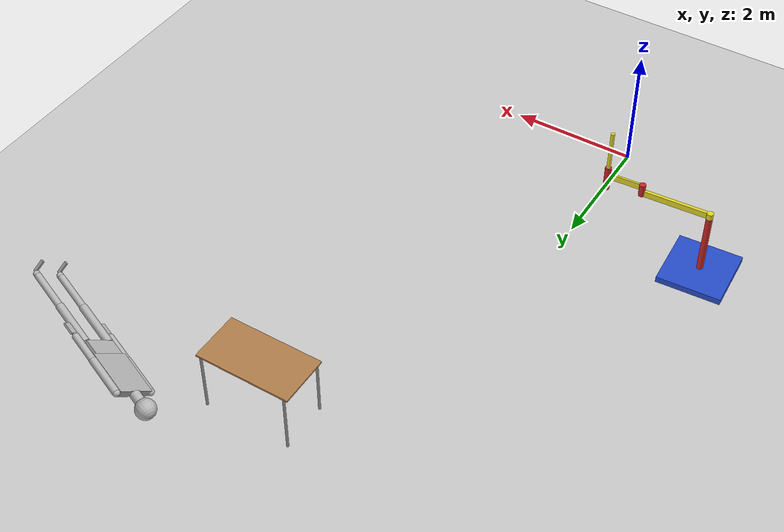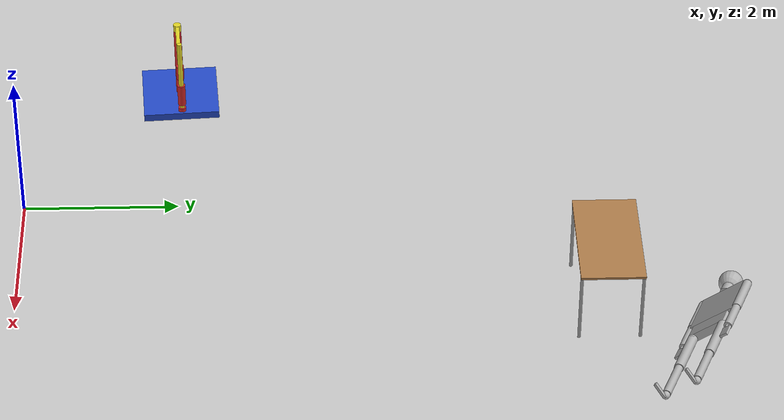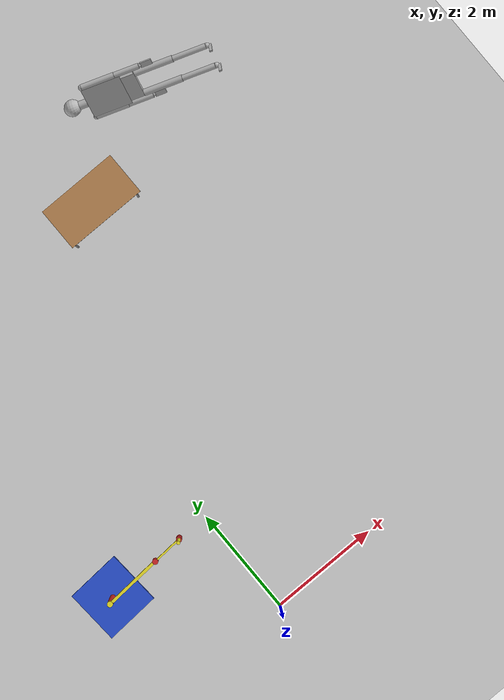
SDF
<sdf version="1.7">
 <world name="default">
  <light name="sun" type="directional">
   <pose>0 0 10 0 -0 0</pose>
   <diffuse>0.8 0.8 0.8 1</diffuse>
   <specular>0.2 0.2 0.2 1</specular>
   <attenuation>
    <range>1000</range>
    <constant>0.9</constant>
    <linear>0.01</linear>
    <quadratic>0.001</quadratic>
   </attenuation>
   <direction>-0.5 0.1 -0.9</direction>
   <spot><inner_angle>0</inner_angle><outer_angle>0</outer_angle><falloff>0</falloff></spot>
  </light>
  <model name="ground_plane">
   <static>1</static>
   <link name="link">
    <collision name="collision">
     <geometry><plane><normal>0 0 1</normal><size>100 100</size></plane></geometry>
     <surface>
      <contact><collide_bitmask>65535</collide_bitmask></contact>
      <friction><ode><mu>100</mu><mu2>50</mu2></ode></friction>
     </surface>
    </collision>
    <visual name="visual">
     <cast_shadows>0</cast_shadows>
     <geometry><plane><normal>0 0 1</normal><size>100 100</size></plane></geometry>
     <material>
      <script><uri>file://media/materials/scripts/gazebo.material</uri><name>Gazebo/Grey</name></script>
     </material>
    </visual>
   </link>
  </model>
  <gravity>0 0 -9.8</gravity>
  <magnetic_field>6e-06 2.3e-05 -4.2e-05</magnetic_field>
  <atmosphere type="adiabatic"/>
  <physics type="ode">
   <max_step_size>0.001</max_step_size>
   <real_time_factor>1</real_time_factor>
   <real_time_update_rate>1000</real_time_update_rate>
  </physics>
  <scene><ambient>0.4 0.4 0.4 1</ambient><background>0.7 0.7 0.7 1</background><shadows>1</shadows></scene>
  <audio><device>default</device></audio>
  <spherical_coordinates>
   <surface_model>EARTH_WGS84</surface_model>
   <latitude_deg>0</latitude_deg>
   <longitude_deg>0</longitude_deg>
   <elevation>0</elevation>
   <heading_deg>0</heading_deg>
  </spherical_coordinates>
  <model name="table">
   <static>1</static>
   <link name="link">
    <collision name="surface">
     <pose>0 0 1 0 -0 0</pose>
     <geometry><box><size>1.5 0.8 0.03</size></box></geometry>
     <surface><friction><ode><mu>0.6</mu><mu2>0.6</mu2></ode></friction></surface>
    </collision>
    <visual name="visual1">
     <pose>0 0 1 0 -0 0</pose>
     <geometry><box><size>1.5 0.8 0.03</size></box></geometry>
     <material>
      <script><uri>file://media/materials/scripts/gazebo.material</uri><name>Gazebo/Wood</name></script>
     </material>
    </visual>
    <collision name="front_left_leg">
     <pose>0.68 0.38 0.5 0 -0 0</pose>
     <geometry><cylinder><radius>0.02</radius><length>1</length></cylinder></geometry>
    </collision>
    <visual name="front_left_leg">
     <pose>0.68 0.38 0.5 0 -0 0</pose>
     <geometry><cylinder><radius>0.02</radius><length>1</length></cylinder></geometry>
     <material>
      <script><uri>file://media/materials/scripts/gazebo.material</uri><name>Gazebo/Grey</name></script>
     </material>
    </visual>
    <collision name="front_right_leg">
     <pose>0.68 -0.38 0.5 0 -0 0</pose>
     <geometry><cylinder><radius>0.02</radius><length>1</length></cylinder></geometry>
    </collision>
    <visual name="front_right_leg">
     <pose>0.68 -0.38 0.5 0 -0 0</pose>
     <geometry><cylinder><radius>0.02</radius><length>1</length></cylinder></geometry>
     <material>
      <script><uri>file://media/materials/scripts/gazebo.material</uri><name>Gazebo/Grey</name></script>
     </material>
    </visual>
    <collision name="back_right_leg">
     <pose>-0.68 -0.38 0.5 0 -0 0</pose>
     <geometry><cylinder><radius>0.02</radius><length>1</length></cylinder></geometry>
    </collision>
    <visual name="back_right_leg">
     <pose>-0.68 -0.38 0.5 0 -0 0</pose>
     <geometry><cylinder><radius>0.02</radius><length>1</length></cylinder></geometry>
     <material>
      <script><uri>file://media/materials/scripts/gazebo.material</uri><name>Gazebo/Grey</name></script>
     </material>
    </visual>
    <collision name="back_left_leg">
     <pose>-0.68 0.38 0.5 0 -0 0</pose>
     <geometry><cylinder><radius>0.02</radius><length>1</length></cylinder></geometry>
    </collision>
    <visual name="back_left_leg">
     <pose>-0.68 0.38 0.5 0 -0 0</pose>
     <geometry><cylinder><radius>0.02</radius><length>1</length></cylinder></geometry>
     <material>
      <script><uri>file://media/materials/scripts/gazebo.material</uri><name>Gazebo/Grey</name></script>
     </material>
    </visual>
   </link>
   <pose>1.99222 7.39445 0 0 -0 0</pose>
  </model>
  <model name="simple_arm">
   <link name="arm_base">
    <inertial>
     <pose>0 0 0.00099 0 -0 0</pose>
     <inertia><ixx>1.11</ixx><ixy>0</ixy><ixz>0</ixz><iyy>100.11</iyy><iyz>0</iyz><izz>1.01</izz></inertia>
     <mass>101</mass>
    </inertial>
    <collision name="arm_base_geom">
     <pose>0 0 0.05 0 -0 0</pose>
     <geometry><box><size>1 1 0.1</size></box></geometry>
    </collision>
    <visual name="arm_base_geom_visual">
     <pose>0 0 0.05 0 -0 0</pose>
     <geometry><box><size>1 1 0.1</size></box></geometry>
     <material>
      <script><uri>file://media/materials/scripts/gazebo.material</uri><name>Gazebo/Blue</name></script>
     </material>
    </visual>
    <collision name="arm_base_geom_arm_trunk">
     <pose>0 0 0.6 0 -0 0</pose>
     <geometry><cylinder><radius>0.05</radius><length>1</length></cylinder></geometry>
    </collision>
    <visual name="arm_base_geom_arm_trunk_visual">
     <pose>0 0 0.6 0 -0 0</pose>
     <geometry><cylinder><radius>0.05</radius><length>1</length></cylinder></geometry>
     <material>
      <script><uri>file://media/materials/scripts/gazebo.material</uri><name>Gazebo/Red</name></script>
     </material>
    </visual>
   </link>
   <link name="arm_shoulder_pan">
    <pose>0 0 1.1 0 -0 0</pose>
    <inertial>
     <pose>0.045455 0 0 0 -0 0</pose>
     <inertia><ixx>0.011</ixx><ixy>0</ixy><ixz>0</ixz><iyy>0.0225</iyy><iyz>0</iyz><izz>0.0135</izz></inertia>
     <mass>1.1</mass>
    </inertial>
    <collision name="arm_shoulder_pan_geom">
     <pose>0 0 0.05 0 -0 0</pose>
     <geometry><cylinder><radius>0.05</radius><length>0.1</length></cylinder></geometry>
    </collision>
    <visual name="arm_shoulder_pan_geom_visual">
     <pose>0 0 0.05 0 -0 0</pose>
     <geometry><cylinder><radius>0.05</radius><length>0.1</length></cylinder></geometry>
     <material>
      <script><uri>file://media/materials/scripts/gazebo.material</uri><name>Gazebo/Yellow</name></script>
     </material>
    </visual>
    <collision name="arm_shoulder_pan_geom_arm_shoulder">
     <pose>0.55 0 0.05 0 -0 0</pose>
     <geometry><box><size>1 0.05 0.1</size></box></geometry>
    </collision>
    <visual name="arm_shoulder_pan_geom_arm_shoulder_visual">
     <pose>0.55 0 0.05 0 -0 0</pose>
     <geometry><box><size>1 0.05 0.1</size></box></geometry>
     <material>
      <script><uri>file://media/materials/scripts/gazebo.material</uri><name>Gazebo/Yellow</name></script>
     </material>
    </visual>
   </link>
   <link name="arm_elbow_pan">
    <pose>1.05 0 1.1 0 -0 0</pose>
    <inertial>
     <pose>0.0875 0 0.083333 0 -0 0</pose>
     <inertia>
      <ixx>0.031</ixx>
      <ixy>0</ixy>
      <ixz>0.005</ixz>
      <iyy>0.07275</iyy>
      <iyz>0</iyz>
      <izz>0.04475</izz>
     </inertia>
     <mass>1.2</mass>
    </inertial>
    <collision name="arm_elbow_pan_geom">
     <pose>0 0 0.1 0 -0 0</pose>
     <geometry><cylinder><radius>0.05</radius><length>0.2</length></cylinder></geometry>
    </collision>
    <visual name="arm_elbow_pan_geom_visual">
     <pose>0 0 0.1 0 -0 0</pose>
     <geometry><cylinder><radius>0.05</radius><length>0.2</length></cylinder></geometry>
     <material>
      <script><uri>file://media/materials/scripts/gazebo.material</uri><name>Gazebo/Red</name></script>
     </material>
    </visual>
    <collision name="arm_elbow_pan_geom_arm_elbow">
     <pose>0.3 0 0.15 0 -0 0</pose>
     <geometry><box><size>0.5 0.03 0.1</size></box></geometry>
    </collision>
    <visual name="arm_elbow_pan_geom_arm_elbow_visual">
     <pose>0.3 0 0.15 0 -0 0</pose>
     <geometry><box><size>0.5 0.03 0.1</size></box></geometry>
     <material>
      <script><uri>file://media/materials/scripts/gazebo.material</uri><name>Gazebo/Yellow</name></script>
     </material>
    </visual>
    <collision name="arm_elbow_pan_geom_arm_wrist">
     <pose>0.55 0 0.15 0 -0 0</pose>
     <geometry><cylinder><radius>0.05</radius><length>0.3</length></cylinder></geometry>
    </collision>
    <visual name="arm_elbow_pan_geom_arm_wrist_visual">
     <pose>0.55 0 0.15 0 -0 0</pose>
     <geometry><cylinder><radius>0.05</radius><length>0.3</length></cylinder></geometry>
     <material>
      <script><uri>file://media/materials/scripts/gazebo.material</uri><name>Gazebo/Red</name></script>
     </material>
    </visual>
   </link>
   <link name="arm_wrist_lift">
    <pose>1.6 0 1.05 0 -0 0</pose>
    <inertial>
     <inertia><ixx>0.01</ixx><ixy>0</ixy><ixz>0</ixz><iyy>0.01</iyy><iyz>0</iyz><izz>0.001</izz></inertia>
     <mass>0.1</mass>
    </inertial>
    <collision name="arm_wrist_lift_geom">
     <pose>0 0 0.5 0 -0 0</pose>
     <geometry><cylinder><radius>0.03</radius><length>1</length></cylinder></geometry>
    </collision>
    <visual name="arm_wrist_lift_geom_visual">
     <pose>0 0 0.5 0 -0 0</pose>
     <geometry><cylinder><radius>0.03</radius><length>1</length></cylinder></geometry>
     <material>
      <script><uri>file://media/materials/scripts/gazebo.material</uri><name>Gazebo/Yellow</name></script>
     </material>
    </visual>
   </link>
   <link name="arm_wrist_roll">
    <pose>1.6 0 1 0 -0 0</pose>
    <inertial>
     <inertia><ixx>0.01</ixx><ixy>0</ixy><ixz>0</ixz><iyy>0.01</iyy><iyz>0</iyz><izz>0.001</izz></inertia>
     <mass>0.1</mass>
    </inertial>
    <collision name="arm_wrist_roll_geom">
     <pose>0 0 0.025 0 -0 0</pose>
     <geometry><cylinder><radius>0.05</radius><length>0.05</length></cylinder></geometry>
    </collision>
    <visual name="arm_wrist_roll_geom_visual">
     <pose>0 0 0.025 0 -0 0</pose>
     <geometry><cylinder><radius>0.05</radius><length>0.05</length></cylinder></geometry>
     <material>
      <script><uri>file://media/materials/scripts/gazebo.material</uri><name>Gazebo/Red</name></script>
     </material>
    </visual>
   </link>
   <joint name="arm_shoulder_pan_joint" type="revolute">
    <parent>arm_base</parent>
    <child>arm_shoulder_pan</child>
    <axis>
     <dynamics>
      <damping>1</damping>
      <friction>0</friction>
      <spring_reference>0</spring_reference>
      <spring_stiffness>0</spring_stiffness>
     </dynamics>
     <xyz expressed_in="__model__">0 0 1</xyz>
     <limit><lower>-1e+16</lower><upper>1e+16</upper></limit>
    </axis>
   </joint>
   <joint name="arm_elbow_pan_joint" type="revolute">
    <parent>arm_shoulder_pan</parent>
    <child>arm_elbow_pan</child>
    <axis>
     <dynamics>
      <damping>1</damping>
      <friction>0</friction>
      <spring_reference>0</spring_reference>
      <spring_stiffness>0</spring_stiffness>
     </dynamics>
     <xyz expressed_in="__model__">0 0 1</xyz>
     <limit><lower>-1e+16</lower><upper>1e+16</upper></limit>
    </axis>
   </joint>
   <joint name="arm_wrist_lift_joint" type="prismatic">
    <parent>arm_elbow_pan</parent>
    <child>arm_wrist_lift</child>
    <axis>
     <dynamics>
      <damping>1</damping>
      <friction>0</friction>
      <spring_reference>0</spring_reference>
      <spring_stiffness>0</spring_stiffness>
     </dynamics>
     <limit><lower>-0.8</lower><upper>0.1</upper></limit>
     <xyz expressed_in="__model__">0 0 1</xyz>
    </axis>
   </joint>
   <joint name="arm_wrist_roll_joint" type="revolute">
    <parent>arm_wrist_lift</parent>
    <child>arm_wrist_roll</child>
    <axis>
     <dynamics>
      <damping>1</damping>
      <friction>0</friction>
      <spring_reference>0</spring_reference>
      <spring_stiffness>0</spring_stiffness>
     </dynamics>
     <limit><lower>-2.99999</lower><upper>2.99999</upper></limit>
     <xyz expressed_in="__model__">0 0 1</xyz>
    </axis>
   </joint>
   <pose>-2.10499 1.98487 0.189745 0.000113 2e-06 0.063215</pose>
  </model>
  <model name="ragdoll">
   <pose>3.89872 8.40072 1.14491 1.83899 -0.837119 -2.12707</pose>
   <link name="hip">
    <inertial>
     <inertia><ixx>0.1</ixx><ixy>0</ixy><ixz>0</ixz><iyy>0.1</iyy><iyz>0</iyz><izz>0.1</izz></inertia>
     <mass>10</mass>
    </inertial>
    <collision name="hip_geom">
     <pose>0 0 0.125 0 -0 0</pose>
     <geometry><box><size>0.1 0.5 0.25</size></box></geometry>
     <surface>
      <friction><ode><mu>-1</mu><mu2>-1</mu2><fdir1>0 0 0</fdir1><slip1>0</slip1><slip2>0</slip2></ode></friction>
      <bounce><restitution_coefficient>0</restitution_coefficient><threshold>100000</threshold></bounce>
      <contact>
       <ode>
        <soft_cfm>0</soft_cfm>
        <soft_erp>0.2</soft_erp>
        <kp>1e+12</kp>
        <kd>1</kd>
        <max_vel>0</max_vel>
        <min_depth>0.001</min_depth>
       </ode>
      </contact>
     </surface>
    </collision>
    <visual name="hip_geom_visual">
     <pose>0 0 0.125 0 -0 0</pose>
     <geometry><box><size>0.1 0.5 0.25</size></box></geometry>
    </visual>
    <gravity>0</gravity>
   </link>
   <link name="l_thigh_pan">
    <pose>0 0.22 0 0 -0 0</pose>
    <inertial>
     <inertia><ixx>0.01</ixx><ixy>0</ixy><ixz>0</ixz><iyy>0.01</iyy><iyz>0</iyz><izz>0.01</izz></inertia>
     <mass>1</mass>
    </inertial>
    <collision name="l_thigh_pan_geom">
     <pose>0 0 -0.03 0 -0 0</pose>
     <geometry><sphere><radius>0.06</radius></sphere></geometry>
     <surface>
      <friction><ode><mu>-1</mu><mu2>-1</mu2><fdir1>0 0 0</fdir1><slip1>0</slip1><slip2>0</slip2></ode></friction>
      <bounce><restitution_coefficient>0</restitution_coefficient><threshold>100000</threshold></bounce>
      <contact>
       <ode>
        <soft_cfm>0</soft_cfm>
        <soft_erp>0.2</soft_erp>
        <kp>1e+12</kp>
        <kd>1</kd>
        <max_vel>0</max_vel>
        <min_depth>0.001</min_depth>
       </ode>
      </contact>
     </surface>
    </collision>
    <visual name="l_thigh_pan_geom_visual">
     <pose>0 0 -0.03 0 -0 0</pose>
     <geometry><sphere><radius>0.06</radius></sphere></geometry>
    </visual>
    <gravity>0</gravity>
   </link>
   <link name="l_thigh_lift">
    <pose>0 0.22 0 0 -0 0</pose>
    <inertial>
     <inertia><ixx>0.05</ixx><ixy>0</ixy><ixz>0</ixz><iyy>0.05</iyy><iyz>0</iyz><izz>0.05</izz></inertia>
     <mass>5</mass>
    </inertial>
    <collision name="l_thigh_lift_geom">
     <pose>0 0 -0.35 0 -0 0</pose>
     <geometry><cylinder><radius>0.06</radius><length>0.7</length></cylinder></geometry>
     <surface>
      <friction><ode><mu>-1</mu><mu2>-1</mu2><fdir1>0 0 0</fdir1><slip1>0</slip1><slip2>0</slip2></ode></friction>
      <bounce><restitution_coefficient>0</restitution_coefficient><threshold>100000</threshold></bounce>
      <contact>
       <ode>
        <soft_cfm>0</soft_cfm>
        <soft_erp>0.2</soft_erp>
        <kp>1e+12</kp>
        <kd>1</kd>
        <max_vel>0</max_vel>
        <min_depth>0.001</min_depth>
       </ode>
      </contact>
     </surface>
    </collision>
    <visual name="l_thigh_lift_geom_visual">
     <pose>0 0 -0.35 0 -0 0</pose>
     <geometry><cylinder><radius>0.06</radius><length>0.7</length></cylinder></geometry>
    </visual>
    <gravity>0</gravity>
   </link>
   <link name="l_calf">
    <pose>0 0.22 -0.7 0 -0 0</pose>
    <inertial>
     <inertia><ixx>0.02</ixx><ixy>0</ixy><ixz>0</ixz><iyy>0.02</iyy><iyz>0</iyz><izz>0.02</izz></inertia>
     <mass>2</mass>
    </inertial>
    <collision name="l_calf_geom">
     <pose>0 0 -0.3 0 -0 0</pose>
     <geometry><cylinder><radius>0.05</radius><length>0.6</length></cylinder></geometry>
     <surface>
      <friction><ode><mu>-1</mu><mu2>-1</mu2><fdir1>0 0 0</fdir1><slip1>0</slip1><slip2>0</slip2></ode></friction>
      <bounce><restitution_coefficient>0</restitution_coefficient><threshold>100000</threshold></bounce>
      <contact>
       <ode>
        <soft_cfm>0</soft_cfm>
        <soft_erp>0.2</soft_erp>
        <kp>1e+12</kp>
        <kd>1</kd>
        <max_vel>0</max_vel>
        <min_depth>0.001</min_depth>
       </ode>
      </contact>
     </surface>
    </collision>
    <visual name="l_calf_geom_visual">
     <pose>0 0 -0.3 0 -0 0</pose>
     <geometry><cylinder><radius>0.05</radius><length>0.6</length></cylinder></geometry>
    </visual>
    <gravity>0</gravity>
   </link>
   <link name="l_ankle">
    <pose>0 0.22 -1.325 0 -0 0</pose>
    <inertial>
     <inertia><ixx>0.01</ixx><ixy>0</ixy><ixz>0</ixz><iyy>0.01</iyy><iyz>0</iyz><izz>0.01</izz></inertia>
     <mass>1</mass>
    </inertial>
    <collision name="l_ankle_geom">
     <geometry><sphere><radius>0.05</radius></sphere></geometry>
     <surface>
      <friction><ode><mu>-1</mu><mu2>-1</mu2><fdir1>0 0 0</fdir1><slip1>0</slip1><slip2>0</slip2></ode></friction>
      <bounce><restitution_coefficient>0</restitution_coefficient><threshold>100000</threshold></bounce>
      <contact>
       <ode>
        <soft_cfm>0</soft_cfm>
        <soft_erp>0.2</soft_erp>
        <kp>1e+12</kp>
        <kd>1</kd>
        <max_vel>0</max_vel>
        <min_depth>0.001</min_depth>
       </ode>
      </contact>
     </surface>
    </collision>
    <visual name="l_ankle_geom_visual"><geometry><sphere><radius>0.05</radius></sphere></geometry></visual>
    <gravity>0</gravity>
   </link>
   <link name="l_foot">
    <pose>0 0.22 -1.35 0 -0 0</pose>
    <inertial>
     <pose>0.1 0 0 0 -0 0</pose>
     <inertia><ixx>0.01</ixx><ixy>0</ixy><ixz>0</ixz><iyy>0.01</iyy><iyz>0</iyz><izz>0.01</izz></inertia>
     <mass>1</mass>
    </inertial>
    <collision name="l_foot_geom">
     <pose>0.1 0 -0.025 0 -0 0</pose>
     <geometry><box><size>0.2 0.03 0.05</size></box></geometry>
     <surface>
      <friction><ode><mu>-1</mu><mu2>-1</mu2><fdir1>0 0 0</fdir1><slip1>0</slip1><slip2>0</slip2></ode></friction>
      <bounce><restitution_coefficient>0</restitution_coefficient><threshold>100000</threshold></bounce>
      <contact>
       <ode>
        <soft_cfm>0</soft_cfm>
        <soft_erp>0.2</soft_erp>
        <kp>1e+12</kp>
        <kd>1</kd>
        <max_vel>0</max_vel>
        <min_depth>0.001</min_depth>
       </ode>
      </contact>
     </surface>
    </collision>
    <visual name="l_foot_geom_visual">
     <pose>0.1 0 -0.025 0 -0 0</pose>
     <geometry><box><size>0.2 0.03 0.05</size></box></geometry>
    </visual>
   </link>
   <link name="r_thigh_pan">
    <pose>0 -0.22 0 0 -0 0</pose>
    <inertial>
     <inertia><ixx>0.01</ixx><ixy>0</ixy><ixz>0</ixz><iyy>0.01</iyy><iyz>0</iyz><izz>0.01</izz></inertia>
     <mass>1</mass>
    </inertial>
    <collision name="r_thigh_pan_geom">
     <pose>0 0 -0.03 0 -0 0</pose>
     <geometry><sphere><radius>0.06</radius></sphere></geometry>
     <surface>
      <friction><ode><mu>-1</mu><mu2>-1</mu2><fdir1>0 0 0</fdir1><slip1>0</slip1><slip2>0</slip2></ode></friction>
      <bounce><restitution_coefficient>0</restitution_coefficient><threshold>100000</threshold></bounce>
      <contact>
       <ode>
        <soft_cfm>0</soft_cfm>
        <soft_erp>0.2</soft_erp>
        <kp>1e+12</kp>
        <kd>1</kd>
        <max_vel>0</max_vel>
        <min_depth>0.001</min_depth>
       </ode>
      </contact>
     </surface>
    </collision>
    <visual name="r_thigh_pan_geom_visual">
     <pose>0 0 -0.03 0 -0 0</pose>
     <geometry><sphere><radius>0.06</radius></sphere></geometry>
    </visual>
    <gravity>0</gravity>
   </link>
   <link name="r_thigh_lift">
    <pose>0 -0.22 0 0 -0 0</pose>
    <inertial>
     <inertia><ixx>0.05</ixx><ixy>0</ixy><ixz>0</ixz><iyy>0.05</iyy><iyz>0</iyz><izz>0.05</izz></inertia>
     <mass>5</mass>
    </inertial>
    <collision name="r_thigh_lift_geom">
     <pose>0 0 -0.35 0 -0 0</pose>
     <geometry><cylinder><radius>0.06</radius><length>0.7</length></cylinder></geometry>
     <surface>
      <friction><ode><mu>-1</mu><mu2>-1</mu2><fdir1>0 0 0</fdir1><slip1>0</slip1><slip2>0</slip2></ode></friction>
      <bounce><restitution_coefficient>0</restitution_coefficient><threshold>100000</threshold></bounce>
      <contact>
       <ode>
        <soft_cfm>0</soft_cfm>
        <soft_erp>0.2</soft_erp>
        <kp>1e+12</kp>
        <kd>1</kd>
        <max_vel>0</max_vel>
        <min_depth>0.001</min_depth>
       </ode>
      </contact>
     </surface>
    </collision>
    <visual name="r_thigh_lift_geom_visual">
     <pose>0 0 -0.35 0 -0 0</pose>
     <geometry><cylinder><radius>0.06</radius><length>0.7</length></cylinder></geometry>
    </visual>
    <gravity>0</gravity>
   </link>
   <link name="r_calf">
    <pose>0 -0.22 -0.7 0 -0 0</pose>
    <inertial>
     <inertia><ixx>0.02</ixx><ixy>0</ixy><ixz>0</ixz><iyy>0.02</iyy><iyz>0</iyz><izz>0.02</izz></inertia>
     <mass>2</mass>
    </inertial>
    <collision name="r_calf_geom">
     <pose>0 0 -0.3 0 -0 0</pose>
     <geometry><cylinder><radius>0.05</radius><length>0.6</length></cylinder></geometry>
     <surface>
      <friction><ode><mu>-1</mu><mu2>-1</mu2><fdir1>0 0 0</fdir1><slip1>0</slip1><slip2>0</slip2></ode></friction>
      <bounce><restitution_coefficient>0</restitution_coefficient><threshold>100000</threshold></bounce>
      <contact>
       <ode>
        <soft_cfm>0</soft_cfm>
        <soft_erp>0.2</soft_erp>
        <kp>1e+12</kp>
        <kd>1</kd>
        <max_vel>0</max_vel>
        <min_depth>0.001</min_depth>
       </ode>
      </contact>
     </surface>
    </collision>
    <visual name="r_calf_geom_visual">
     <pose>0 0 -0.3 0 -0 0</pose>
     <geometry><cylinder><radius>0.05</radius><length>0.6</length></cylinder></geometry>
    </visual>
    <gravity>0</gravity>
   </link>
   <link name="r_ankle">
    <pose>0 -0.22 -1.325 0 -0 0</pose>
    <inertial>
     <inertia><ixx>0.01</ixx><ixy>0</ixy><ixz>0</ixz><iyy>0.01</iyy><iyz>0</iyz><izz>0.01</izz></inertia>
     <mass>1</mass>
    </inertial>
    <collision name="r_ankle_geom">
     <geometry><sphere><radius>0.05</radius></sphere></geometry>
     <surface>
      <friction><ode><mu>-1</mu><mu2>-1</mu2><fdir1>0 0 0</fdir1><slip1>0</slip1><slip2>0</slip2></ode></friction>
      <bounce><restitution_coefficient>0</restitution_coefficient><threshold>100000</threshold></bounce>
      <contact>
       <ode>
        <soft_cfm>0</soft_cfm>
        <soft_erp>0.2</soft_erp>
        <kp>1e+12</kp>
        <kd>1</kd>
        <max_vel>0</max_vel>
        <min_depth>0.001</min_depth>
       </ode>
      </contact>
     </surface>
    </collision>
    <visual name="r_ankle_geom_visual"><geometry><sphere><radius>0.05</radius></sphere></geometry></visual>
    <gravity>0</gravity>
   </link>
   <link name="r_foot">
    <pose>0 -0.22 -1.35 0 -0 0</pose>
    <inertial>
     <pose>0.1 0 0 0 -0 0</pose>
     <inertia><ixx>0.01</ixx><ixy>0</ixy><ixz>0</ixz><iyy>0.01</iyy><iyz>0</iyz><izz>0.01</izz></inertia>
     <mass>1</mass>
    </inertial>
    <collision name="r_foot_geom">
     <pose>0.1 0 -0.025 0 -0 0</pose>
     <geometry><box><size>0.2 0.03 0.05</size></box></geometry>
     <surface>
      <friction><ode><mu>-1</mu><mu2>-1</mu2><fdir1>0 0 0</fdir1><slip1>0</slip1><slip2>0</slip2></ode></friction>
      <bounce><restitution_coefficient>0</restitution_coefficient><threshold>100000</threshold></bounce>
      <contact>
       <ode>
        <soft_cfm>0</soft_cfm>
        <soft_erp>0.2</soft_erp>
        <kp>1e+12</kp>
        <kd>1</kd>
        <max_vel>0</max_vel>
        <min_depth>0.001</min_depth>
       </ode>
      </contact>
     </surface>
    </collision>
    <visual name="r_foot_geom_visual">
     <pose>0.1 0 -0.025 0 -0 0</pose>
     <geometry><box><size>0.2 0.03 0.05</size></box></geometry>
    </visual>
   </link>
   <link name="torso">
    <pose>0 0 0.25 0 -0 0</pose>
    <inertial>
     <inertia><ixx>0.3</ixx><ixy>0</ixy><ixz>0</ixz><iyy>0.3</iyy><iyz>0</iyz><izz>0.3</izz></inertia>
     <mass>30</mass>
    </inertial>
    <collision name="torso_geom">
     <pose>0 0 0.35 0 -0 0</pose>
     <geometry><box><size>0.1 0.6 0.7</size></box></geometry>
     <surface>
      <friction><ode><mu>-1</mu><mu2>-1</mu2><fdir1>0 0 0</fdir1><slip1>0</slip1><slip2>0</slip2></ode></friction>
      <bounce><restitution_coefficient>0</restitution_coefficient><threshold>100000</threshold></bounce>
      <contact>
       <ode>
        <soft_cfm>0</soft_cfm>
        <soft_erp>0.2</soft_erp>
        <kp>1e+12</kp>
        <kd>1</kd>
        <max_vel>0</max_vel>
        <min_depth>0.001</min_depth>
       </ode>
      </contact>
     </surface>
    </collision>
    <visual name="torso_geom_visual">
     <pose>0 0 0.35 0 -0 0</pose>
     <geometry><box><size>0.1 0.6 0.7</size></box></geometry>
    </visual>
    <gravity>0</gravity>
   </link>
   <link name="l_shoulder">
    <pose>0 0.3275 0.9225 0 -0 0</pose>
    <inertial>
     <inertia><ixx>0.01</ixx><ixy>0</ixy><ixz>0</ixz><iyy>0.01</iyy><iyz>0</iyz><izz>0.01</izz></inertia>
     <mass>1</mass>
    </inertial>
    <collision name="l_shoulder_geom">
     <geometry><sphere><radius>0.055</radius></sphere></geometry>
     <surface>
      <friction><ode><mu>-1</mu><mu2>-1</mu2><fdir1>0 0 0</fdir1><slip1>0</slip1><slip2>0</slip2></ode></friction>
      <bounce><restitution_coefficient>0</restitution_coefficient><threshold>100000</threshold></bounce>
      <contact>
       <ode>
        <soft_cfm>0</soft_cfm>
        <soft_erp>0.2</soft_erp>
        <kp>1e+12</kp>
        <kd>1</kd>
        <max_vel>0</max_vel>
        <min_depth>0.001</min_depth>
       </ode>
      </contact>
     </surface>
    </collision>
    <visual name="l_shoulder_geom_visual"><geometry><sphere><radius>0.055</radius></sphere></geometry></visual>
    <gravity>0</gravity>
   </link>
   <link name="l_upper_arm">
    <pose>0 0.3275 0.9225 0 -0 0</pose>
    <inertial>
     <inertia><ixx>0.02</ixx><ixy>0</ixy><ixz>0</ixz><iyy>0.02</iyy><iyz>0</iyz><izz>0.02</izz></inertia>
     <mass>2</mass>
    </inertial>
    <collision name="l_upper_arm_geom">
     <pose>0 0 -0.3 0 -0 0</pose>
     <geometry><cylinder><radius>0.055</radius><length>0.6</length></cylinder></geometry>
     <surface>
      <friction><ode><mu>-1</mu><mu2>-1</mu2><fdir1>0 0 0</fdir1><slip1>0</slip1><slip2>0</slip2></ode></friction>
      <bounce><restitution_coefficient>0</restitution_coefficient><threshold>100000</threshold></bounce>
      <contact>
       <ode>
        <soft_cfm>0</soft_cfm>
        <soft_erp>0.2</soft_erp>
        <kp>1e+12</kp>
        <kd>1</kd>
        <max_vel>0</max_vel>
        <min_depth>0.001</min_depth>
       </ode>
      </contact>
     </surface>
    </collision>
    <visual name="l_upper_arm_geom_visual">
     <pose>0 0 -0.3 0 -0 0</pose>
     <geometry><cylinder><radius>0.055</radius><length>0.6</length></cylinder></geometry>
    </visual>
    <gravity>0</gravity>
   </link>
   <link name="l_forearm">
    <pose>0 0.3275 0.3225 0 -0 0</pose>
    <inertial>
     <inertia><ixx>0.01</ixx><ixy>0</ixy><ixz>0</ixz><iyy>0.01</iyy><iyz>0</iyz><izz>0.01</izz></inertia>
     <mass>1</mass>
    </inertial>
    <collision name="l_forearm_geom">
     <pose>0 0 -0.225 0 -0 0</pose>
     <geometry><cylinder><radius>0.05</radius><length>0.45</length></cylinder></geometry>
     <surface>
      <friction><ode><mu>-1</mu><mu2>-1</mu2><fdir1>0 0 0</fdir1><slip1>0</slip1><slip2>0</slip2></ode></friction>
      <bounce><restitution_coefficient>0</restitution_coefficient><threshold>100000</threshold></bounce>
      <contact>
       <ode>
        <soft_cfm>0</soft_cfm>
        <soft_erp>0.2</soft_erp>
        <kp>1e+12</kp>
        <kd>1</kd>
        <max_vel>0</max_vel>
        <min_depth>0.001</min_depth>
       </ode>
      </contact>
     </surface>
    </collision>
    <visual name="l_forearm_geom_visual">
     <pose>0 0 -0.225 0 -0 0</pose>
     <geometry><cylinder><radius>0.05</radius><length>0.45</length></cylinder></geometry>
    </visual>
    <gravity>0</gravity>
   </link>
   <link name="l_wrist">
    <pose>0 0.3275 -0.1425 0 -0 0</pose>
    <inertial>
     <inertia><ixx>0.01</ixx><ixy>0</ixy><ixz>0</ixz><iyy>0.01</iyy><iyz>0</iyz><izz>0.01</izz></inertia>
     <mass>1</mass>
    </inertial>
    <collision name="l_wrist_geom">
     <geometry><sphere><radius>0.03</radius></sphere></geometry>
     <surface>
      <friction><ode><mu>-1</mu><mu2>-1</mu2><fdir1>0 0 0</fdir1><slip1>0</slip1><slip2>0</slip2></ode></friction>
      <bounce><restitution_coefficient>0</restitution_coefficient><threshold>100000</threshold></bounce>
      <contact>
       <ode>
        <soft_cfm>0</soft_cfm>
        <soft_erp>0.2</soft_erp>
        <kp>1e+12</kp>
        <kd>1</kd>
        <max_vel>0</max_vel>
        <min_depth>0.001</min_depth>
       </ode>
      </contact>
     </surface>
    </collision>
    <visual name="l_wrist_geom_visual"><geometry><sphere><radius>0.03</radius></sphere></geometry></visual>
    <gravity>0</gravity>
   </link>
   <link name="l_hand">
    <pose>0 0.3275 -0.1575 0 -0 0</pose>
    <inertial>
     <inertia><ixx>0.01</ixx><ixy>0</ixy><ixz>0</ixz><iyy>0.01</iyy><iyz>0</iyz><izz>0.01</izz></inertia>
     <mass>1</mass>
    </inertial>
    <collision name="l_hand_geom">
     <pose>0 0 -0.1 0 -0 0</pose>
     <geometry><box><size>0.03 0.1 0.2</size></box></geometry>
     <surface>
      <friction><ode><mu>-1</mu><mu2>-1</mu2><fdir1>0 0 0</fdir1><slip1>0</slip1><slip2>0</slip2></ode></friction>
      <bounce><restitution_coefficient>0</restitution_coefficient><threshold>100000</threshold></bounce>
      <contact>
       <ode>
        <soft_cfm>0</soft_cfm>
        <soft_erp>0.2</soft_erp>
        <kp>1e+12</kp>
        <kd>1</kd>
        <max_vel>0</max_vel>
        <min_depth>0.001</min_depth>
       </ode>
      </contact>
     </surface>
    </collision>
    <visual name="l_hand_geom_visual">
     <pose>0 0 -0.1 0 -0 0</pose>
     <geometry><box><size>0.03 0.1 0.2</size></box></geometry>
    </visual>
    <gravity>0</gravity>
   </link>
   <link name="neck">
    <pose>0 0 0.95 0 -0 0</pose>
    <inertial>
     <inertia><ixx>0.01</ixx><ixy>0</ixy><ixz>0</ixz><iyy>0.01</iyy><iyz>0</iyz><izz>0.01</izz></inertia>
     <mass>1</mass>
    </inertial>
    <collision name="neck_geom">
     <pose>0 0 0.1 0 -0 0</pose>
     <geometry><cylinder><radius>0.075</radius><length>0.2</length></cylinder></geometry>
     <surface>
      <friction><ode><mu>-1</mu><mu2>-1</mu2><fdir1>0 0 0</fdir1><slip1>0</slip1><slip2>0</slip2></ode></friction>
      <bounce><restitution_coefficient>0</restitution_coefficient><threshold>100000</threshold></bounce>
      <contact>
       <ode>
        <soft_cfm>0</soft_cfm>
        <soft_erp>0.2</soft_erp>
        <kp>1e+12</kp>
        <kd>1</kd>
        <max_vel>0</max_vel>
        <min_depth>0.001</min_depth>
       </ode>
      </contact>
     </surface>
    </collision>
    <visual name="neck_geom_visual">
     <pose>0 0 0.1 0 -0 0</pose>
     <geometry><cylinder><radius>0.075</radius><length>0.2</length></cylinder></geometry>
    </visual>
    <gravity>0</gravity>
   </link>
   <link name="head">
    <pose>0 0 1.225 0 -0 0</pose>
    <inertial>
     <inertia><ixx>0.1</ixx><ixy>0</ixy><ixz>0</ixz><iyy>0.1</iyy><iyz>0</iyz><izz>0.1</izz></inertia>
     <mass>10</mass>
    </inertial>
    <collision name="head_geom">
     <geometry><sphere><radius>0.15</radius></sphere></geometry>
     <surface>
      <friction><ode><mu>-1</mu><mu2>-1</mu2><fdir1>0 0 0</fdir1><slip1>0</slip1><slip2>0</slip2></ode></friction>
      <bounce><restitution_coefficient>0</restitution_coefficient><threshold>100000</threshold></bounce>
      <contact>
       <ode>
        <soft_cfm>0</soft_cfm>
        <soft_erp>0.2</soft_erp>
        <kp>1e+12</kp>
        <kd>1</kd>
        <max_vel>0</max_vel>
        <min_depth>0.001</min_depth>
       </ode>
      </contact>
     </surface>
    </collision>
    <visual name="head_geom_visual"><geometry><sphere><radius>0.15</radius></sphere></geometry></visual>
    <gravity>0</gravity>
   </link>
   <link name="r_shoulder">
    <pose>0 -0.3275 0.9225 0 -0 0</pose>
    <inertial>
     <inertia><ixx>0.01</ixx><ixy>0</ixy><ixz>0</ixz><iyy>0.01</iyy><iyz>0</iyz><izz>0.01</izz></inertia>
     <mass>1</mass>
    </inertial>
    <collision name="r_shoulder_geom">
     <geometry><sphere><radius>0.055</radius></sphere></geometry>
     <surface>
      <friction><ode><mu>-1</mu><mu2>-1</mu2><fdir1>0 0 0</fdir1><slip1>0</slip1><slip2>0</slip2></ode></friction>
      <bounce><restitution_coefficient>0</restitution_coefficient><threshold>100000</threshold></bounce>
      <contact>
       <ode>
        <soft_cfm>0</soft_cfm>
        <soft_erp>0.2</soft_erp>
        <kp>1e+12</kp>
        <kd>1</kd>
        <max_vel>0</max_vel>
        <min_depth>0.001</min_depth>
       </ode>
      </contact>
     </surface>
    </collision>
    <visual name="r_shoulder_geom_visual"><geometry><sphere><radius>0.055</radius></sphere></geometry></visual>
    <gravity>0</gravity>
   </link>
   <link name="r_upper_arm">
    <pose>0 -0.3275 0.9225 0 -0 0</pose>
    <inertial>
     <inertia><ixx>0.02</ixx><ixy>0</ixy><ixz>0</ixz><iyy>0.02</iyy><iyz>0</iyz><izz>0.02</izz></inertia>
     <mass>2</mass>
    </inertial>
    <collision name="r_upper_arm_geom">
     <pose>0 0 -0.3 0 -0 0</pose>
     <geometry><cylinder><radius>0.055</radius><length>0.6</length></cylinder></geometry>
     <surface>
      <friction><ode><mu>-1</mu><mu2>-1</mu2><fdir1>0 0 0</fdir1><slip1>0</slip1><slip2>0</slip2></ode></friction>
      <bounce><restitution_coefficient>0</restitution_coefficient><threshold>100000</threshold></bounce>
      <contact>
       <ode>
        <soft_cfm>0</soft_cfm>
        <soft_erp>0.2</soft_erp>
        <kp>1e+12</kp>
        <kd>1</kd>
        <max_vel>0</max_vel>
        <min_depth>0.001</min_depth>
       </ode>
      </contact>
     </surface>
    </collision>
    <visual name="r_upper_arm_geom_visual">
     <pose>0 0 -0.3 0 -0 0</pose>
     <geometry><cylinder><radius>0.055</radius><length>0.6</length></cylinder></geometry>
    </visual>
    <gravity>0</gravity>
   </link>
   <link name="r_forearm">
    <pose>0 -0.3275 0.3225 0 -0 0</pose>
    <inertial>
     <inertia><ixx>0.01</ixx><ixy>0</ixy><ixz>0</ixz><iyy>0.01</iyy><iyz>0</iyz><izz>0.01</izz></inertia>
     <mass>1</mass>
    </inertial>
    <collision name="r_forearm_geom">
     <pose>0 0 -0.225 0 -0 0</pose>
     <geometry><cylinder><radius>0.05</radius><length>0.45</length></cylinder></geometry>
     <surface>
      <friction><ode><mu>-1</mu><mu2>-1</mu2><fdir1>0 0 0</fdir1><slip1>0</slip1><slip2>0</slip2></ode></friction>
      <bounce><restitution_coefficient>0</restitution_coefficient><threshold>100000</threshold></bounce>
      <contact>
       <ode>
        <soft_cfm>0</soft_cfm>
        <soft_erp>0.2</soft_erp>
        <kp>1e+12</kp>
        <kd>1</kd>
        <max_vel>0</max_vel>
        <min_depth>0.001</min_depth>
       </ode>
      </contact>
     </surface>
    </collision>
    <visual name="r_forearm_geom_visual">
     <pose>0 0 -0.225 0 -0 0</pose>
     <geometry><cylinder><radius>0.05</radius><length>0.45</length></cylinder></geometry>
    </visual>
    <gravity>0</gravity>
   </link>
   <link name="r_wrist">
    <pose>0 -0.3275 -0.1425 0 -0 0</pose>
    <inertial>
     <inertia><ixx>0.01</ixx><ixy>0</ixy><ixz>0</ixz><iyy>0.01</iyy><iyz>0</iyz><izz>0.01</izz></inertia>
     <mass>1</mass>
    </inertial>
    <collision name="r_wrist_geom">
     <geometry><sphere><radius>0.03</radius></sphere></geometry>
     <surface>
      <friction><ode><mu>-1</mu><mu2>-1</mu2><fdir1>0 0 0</fdir1><slip1>0</slip1><slip2>0</slip2></ode></friction>
      <bounce><restitution_coefficient>0</restitution_coefficient><threshold>100000</threshold></bounce>
      <contact>
       <ode>
        <soft_cfm>0</soft_cfm>
        <soft_erp>0.2</soft_erp>
        <kp>1e+12</kp>
        <kd>1</kd>
        <max_vel>0</max_vel>
        <min_depth>0.001</min_depth>
       </ode>
      </contact>
     </surface>
    </collision>
    <visual name="r_wrist_geom_visual"><geometry><sphere><radius>0.03</radius></sphere></geometry></visual>
    <gravity>0</gravity>
   </link>
   <link name="r_hand">
    <pose>0 -0.3275 -0.1575 0 -0 0</pose>
    <inertial>
     <inertia><ixx>0.01</ixx><ixy>0</ixy><ixz>0</ixz><iyy>0.01</iyy><iyz>0</iyz><izz>0.01</izz></inertia>
     <mass>1</mass>
    </inertial>
    <collision name="r_hand_geom">
     <pose>0 0 -0.1 0 -0 0</pose>
     <geometry><box><size>0.03 0.1 0.2</size></box></geometry>
     <surface>
      <friction><ode><mu>-1</mu><mu2>-1</mu2><fdir1>0 0 0</fdir1><slip1>0</slip1><slip2>0</slip2></ode></friction>
      <bounce><restitution_coefficient>0</restitution_coefficient><threshold>100000</threshold></bounce>
      <contact>
       <ode>
        <soft_cfm>0</soft_cfm>
        <soft_erp>0.2</soft_erp>
        <kp>1e+12</kp>
        <kd>1</kd>
        <max_vel>0</max_vel>
        <min_depth>0.001</min_depth>
       </ode>
      </contact>
     </surface>
    </collision>
    <visual name="r_hand_geom_visual">
     <pose>0 0 -0.1 0 -0 0</pose>
     <geometry><box><size>0.03 0.1 0.2</size></box></geometry>
    </visual>
    <gravity>0</gravity>
   </link>
   <joint name="l_thigh_pan_joint" type="revolute">
    <parent>hip</parent>
    <child>l_thigh_pan</child>
    <axis>
     <dynamics>
      <damping>0</damping>
      <friction>0</friction>
      <spring_reference>0</spring_reference>
      <spring_stiffness>0</spring_stiffness>
     </dynamics>
     <limit><lower>-1.5708</lower><upper>1.5708</upper><effort>0</effort><velocity>0</velocity></limit>
     <xyz expressed_in="__model__">0 0 1</xyz>
    </axis>
   </joint>
   <joint name="l_thigh_lift_joint" type="revolute">
    <parent>l_thigh_pan</parent>
    <child>l_thigh_lift</child>
    <axis>
     <dynamics>
      <damping>0</damping>
      <friction>0</friction>
      <spring_reference>0</spring_reference>
      <spring_stiffness>0</spring_stiffness>
     </dynamics>
     <limit><lower>-1.5708</lower><upper>1.5708</upper><effort>0</effort><velocity>0</velocity></limit>
     <xyz expressed_in="__model__">0 1 0</xyz>
    </axis>
   </joint>
   <joint name="l_calf_joint" type="revolute">
    <parent>l_thigh_lift</parent>
    <child>l_calf</child>
    <axis>
     <dynamics>
      <damping>0</damping>
      <friction>0</friction>
      <spring_reference>0</spring_reference>
      <spring_stiffness>0</spring_stiffness>
     </dynamics>
     <limit><lower>-1.5708</lower><upper>1.5708</upper><effort>0</effort><velocity>0</velocity></limit>
     <xyz expressed_in="__model__">0 1 0</xyz>
    </axis>
   </joint>
   <joint name="l_ankle_joint" type="revolute">
    <parent>l_calf</parent>
    <child>l_ankle</child>
    <axis>
     <dynamics>
      <damping>0</damping>
      <friction>0</friction>
      <spring_reference>0</spring_reference>
      <spring_stiffness>0</spring_stiffness>
     </dynamics>
     <limit><lower>-1.5708</lower><upper>1.5708</upper><effort>0</effort><velocity>0</velocity></limit>
     <xyz expressed_in="__model__">0 1 0</xyz>
    </axis>
   </joint>
   <joint name="l_foot_joint" type="revolute">
    <parent>l_ankle</parent>
    <child>l_foot</child>
    <axis>
     <dynamics>
      <damping>0</damping>
      <friction>0</friction>
      <spring_reference>0</spring_reference>
      <spring_stiffness>0</spring_stiffness>
     </dynamics>
     <limit><lower>-1.5708</lower><upper>1.5708</upper><effort>0</effort><velocity>0</velocity></limit>
     <xyz expressed_in="__model__">1 0 0</xyz>
    </axis>
   </joint>
   <joint name="r_thigh_pan_joint" type="revolute">
    <parent>hip</parent>
    <child>r_thigh_pan</child>
    <axis>
     <dynamics>
      <damping>0</damping>
      <friction>0</friction>
      <spring_reference>0</spring_reference>
      <spring_stiffness>0</spring_stiffness>
     </dynamics>
     <limit><lower>-1.5708</lower><upper>1.5708</upper><effort>0</effort><velocity>0</velocity></limit>
     <xyz expressed_in="__model__">0 0 1</xyz>
    </axis>
   </joint>
   <joint name="r_thigh_lift_joint" type="revolute">
    <parent>r_thigh_pan</parent>
    <child>r_thigh_lift</child>
    <axis>
     <dynamics>
      <damping>0</damping>
      <friction>0</friction>
      <spring_reference>0</spring_reference>
      <spring_stiffness>0</spring_stiffness>
     </dynamics>
     <limit><lower>-1.5708</lower><upper>1.5708</upper><effort>0</effort><velocity>0</velocity></limit>
     <xyz expressed_in="__model__">0 1 0</xyz>
    </axis>
   </joint>
   <joint name="r_calf_joint" type="revolute">
    <parent>r_thigh_lift</parent>
    <child>r_calf</child>
    <axis>
     <dynamics>
      <damping>0</damping>
      <friction>0</friction>
      <spring_reference>0</spring_reference>
      <spring_stiffness>0</spring_stiffness>
     </dynamics>
     <limit><lower>-1.5708</lower><upper>1.5708</upper><effort>0</effort><velocity>0</velocity></limit>
     <xyz expressed_in="__model__">0 1 0</xyz>
    </axis>
   </joint>
   <joint name="r_ankle_joint" type="revolute">
    <parent>r_calf</parent>
    <child>r_ankle</child>
    <axis>
     <dynamics>
      <damping>0</damping>
      <friction>0</friction>
      <spring_reference>0</spring_reference>
      <spring_stiffness>0</spring_stiffness>
     </dynamics>
     <limit><lower>-1.5708</lower><upper>1.5708</upper><effort>0</effort><velocity>0</velocity></limit>
     <xyz expressed_in="__model__">0 1 0</xyz>
    </axis>
   </joint>
   <joint name="r_foot_joint" type="revolute">
    <parent>r_ankle</parent>
    <child>r_foot</child>
    <axis>
     <dynamics>
      <damping>0</damping>
      <friction>0</friction>
      <spring_reference>0</spring_reference>
      <spring_stiffness>0</spring_stiffness>
     </dynamics>
     <limit><lower>-1.5708</lower><upper>1.5708</upper><effort>0</effort><velocity>0</velocity></limit>
     <xyz expressed_in="__model__">1 0 0</xyz>
    </axis>
   </joint>
   <joint name="torso_joint" type="revolute">
    <parent>hip</parent>
    <child>torso</child>
    <axis>
     <dynamics>
      <damping>0</damping>
      <friction>0</friction>
      <spring_reference>0</spring_reference>
      <spring_stiffness>0</spring_stiffness>
     </dynamics>
     <limit><lower>-1.5708</lower><upper>1.5708</upper><effort>0</effort><velocity>0</velocity></limit>
     <xyz expressed_in="__model__">0 1 0</xyz>
    </axis>
   </joint>
   <joint name="l_shoulder_joint" type="revolute">
    <parent>torso</parent>
    <child>l_shoulder</child>
    <axis>
     <dynamics>
      <damping>0</damping>
      <friction>0</friction>
      <spring_reference>0</spring_reference>
      <spring_stiffness>0</spring_stiffness>
     </dynamics>
     <limit><lower>-1.5708</lower><upper>1.5708</upper><effort>0</effort><velocity>0</velocity></limit>
     <xyz expressed_in="__model__">1 0 0</xyz>
    </axis>
   </joint>
   <joint name="l_upper_arm_joint" type="revolute">
    <parent>l_shoulder</parent>
    <child>l_upper_arm</child>
    <axis>
     <dynamics>
      <damping>0</damping>
      <friction>0</friction>
      <spring_reference>0</spring_reference>
      <spring_stiffness>0</spring_stiffness>
     </dynamics>
     <limit><lower>-1.5708</lower><upper>1.5708</upper><effort>0</effort><velocity>0</velocity></limit>
     <xyz expressed_in="__model__">0 1 0</xyz>
    </axis>
   </joint>
   <joint name="l_forearm_joint" type="revolute">
    <parent>l_upper_arm</parent>
    <child>l_forearm</child>
    <axis>
     <dynamics>
      <damping>0</damping>
      <friction>0</friction>
      <spring_reference>0</spring_reference>
      <spring_stiffness>0</spring_stiffness>
     </dynamics>
     <limit><lower>-1.5708</lower><upper>1.5708</upper><effort>0</effort><velocity>0</velocity></limit>
     <xyz expressed_in="__model__">0 1 0</xyz>
    </axis>
   </joint>
   <joint name="l_wrist_joint" type="revolute">
    <parent>l_forearm</parent>
    <child>l_wrist</child>
    <axis>
     <dynamics>
      <damping>0</damping>
      <friction>0</friction>
      <spring_reference>0</spring_reference>
      <spring_stiffness>0</spring_stiffness>
     </dynamics>
     <limit><lower>-1.5708</lower><upper>1.5708</upper><effort>0</effort><velocity>0</velocity></limit>
     <xyz expressed_in="__model__">0 1 0</xyz>
    </axis>
   </joint>
   <joint name="l_hand_joint" type="revolute">
    <parent>l_wrist</parent>
    <child>l_hand</child>
    <axis>
     <dynamics>
      <damping>0</damping>
      <friction>0</friction>
      <spring_reference>0</spring_reference>
      <spring_stiffness>0</spring_stiffness>
     </dynamics>
     <limit><lower>-1.5708</lower><upper>1.5708</upper><effort>0</effort><velocity>0</velocity></limit>
     <xyz expressed_in="__model__">0 1 0</xyz>
    </axis>
   </joint>
   <joint name="neck_joint" type="revolute">
    <parent>torso</parent>
    <child>neck</child>
    <axis>
     <dynamics>
      <damping>0</damping>
      <friction>0</friction>
      <spring_reference>0</spring_reference>
      <spring_stiffness>0</spring_stiffness>
     </dynamics>
     <limit><lower>-1.5708</lower><upper>1.5708</upper><effort>0</effort><velocity>0</velocity></limit>
     <xyz expressed_in="__model__">0 0 1</xyz>
    </axis>
   </joint>
   <joint name="head_joint" type="revolute">
    <parent>neck</parent>
    <child>head</child>
    <axis>
     <dynamics>
      <damping>0</damping>
      <friction>0</friction>
      <spring_reference>0</spring_reference>
      <spring_stiffness>0</spring_stiffness>
     </dynamics>
     <limit><lower>-1.5708</lower><upper>1.5708</upper><effort>0</effort><velocity>0</velocity></limit>
     <xyz expressed_in="__model__">0 1 0</xyz>
    </axis>
   </joint>
   <joint name="r_shoulder_joint" type="revolute">
    <parent>torso</parent>
    <child>r_shoulder</child>
    <axis>
     <dynamics>
      <damping>0</damping>
      <friction>0</friction>
      <spring_reference>0</spring_reference>
      <spring_stiffness>0</spring_stiffness>
     </dynamics>
     <limit><lower>-1.5708</lower><upper>1.5708</upper><effort>0</effort><velocity>0</velocity></limit>
     <xyz expressed_in="__model__">1 0 0</xyz>
    </axis>
   </joint>
   <joint name="r_upper_arm_joint" type="revolute">
    <parent>r_shoulder</parent>
    <child>r_upper_arm</child>
    <axis>
     <dynamics>
      <damping>0</damping>
      <friction>0</friction>
      <spring_reference>0</spring_reference>
      <spring_stiffness>0</spring_stiffness>
     </dynamics>
     <limit><lower>-1.5708</lower><upper>1.5708</upper><effort>0</effort><velocity>0</velocity></limit>
     <xyz expressed_in="__model__">0 1 0</xyz>
    </axis>
   </joint>
   <joint name="r_forearm_joint" type="revolute">
    <parent>r_upper_arm</parent>
    <child>r_forearm</child>
    <axis>
     <dynamics>
      <damping>0</damping>
      <friction>0</friction>
      <spring_reference>0</spring_reference>
      <spring_stiffness>0</spring_stiffness>
     </dynamics>
     <limit><lower>-1.5708</lower><upper>1.5708</upper><effort>0</effort><velocity>0</velocity></limit>
     <xyz expressed_in="__model__">0 1 0</xyz>
    </axis>
   </joint>
   <joint name="r_wrist_joint" type="revolute">
    <parent>r_forearm</parent>
    <child>r_wrist</child>
    <axis>
     <dynamics>
      <damping>0</damping>
      <friction>0</friction>
      <spring_reference>0</spring_reference>
      <spring_stiffness>0</spring_stiffness>
     </dynamics>
     <limit><lower>-1.5708</lower><upper>1.5708</upper><effort>0</effort><velocity>0</velocity></limit>
     <xyz expressed_in="__model__">0 1 0</xyz>
    </axis>
   </joint>
   <joint name="r_hand_joint" type="revolute">
    <parent>r_wrist</parent>
    <child>r_hand</child>
    <axis>
     <dynamics>
      <damping>0</damping>
      <friction>0</friction>
      <spring_reference>0</spring_reference>
      <spring_stiffness>0</spring_stiffness>
     </dynamics>
     <limit><lower>-1.5708</lower><upper>1.5708</upper><effort>0</effort><velocity>0</velocity></limit>
     <xyz expressed_in="__model__">0 1 0</xyz>
    </axis>
   </joint>
   <static>0</static>
  </model>
 </world>
</sdf>
